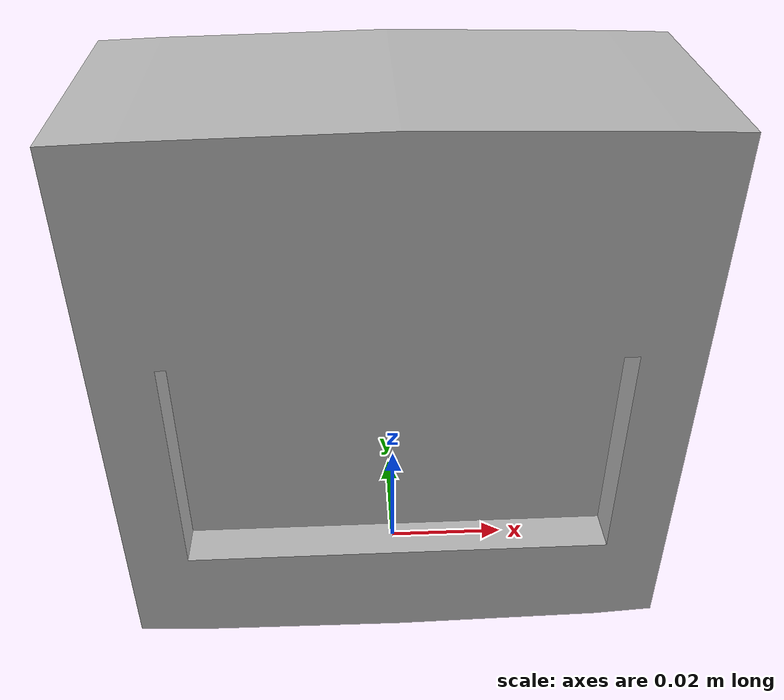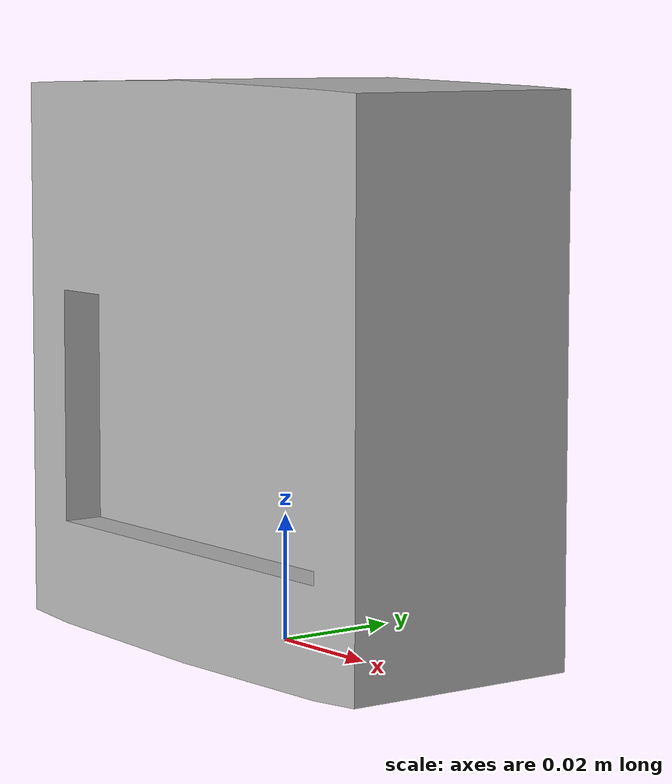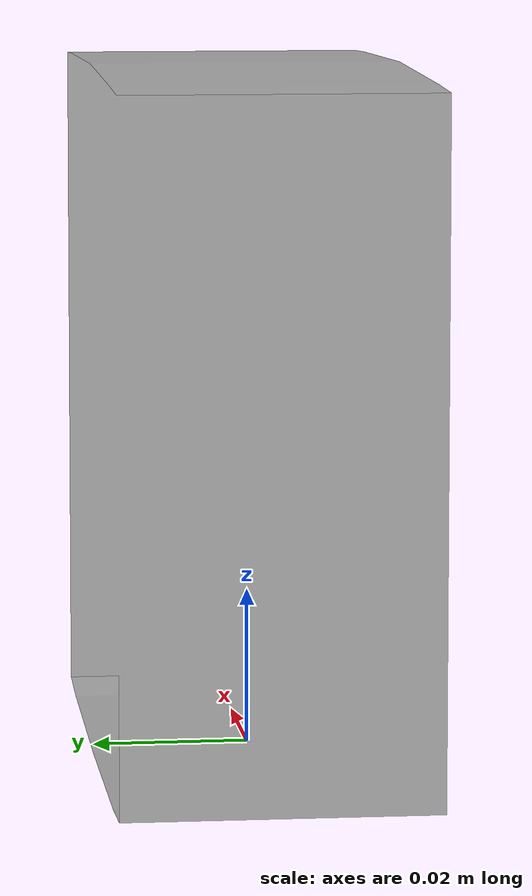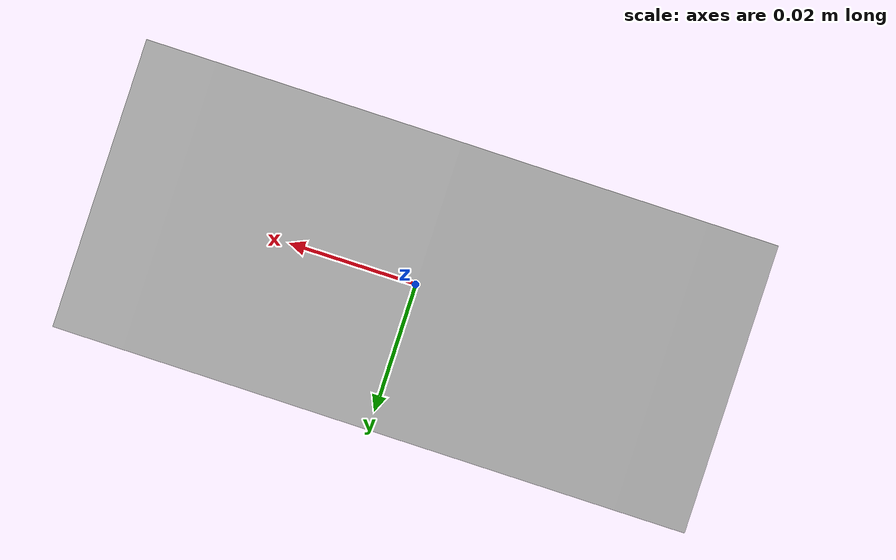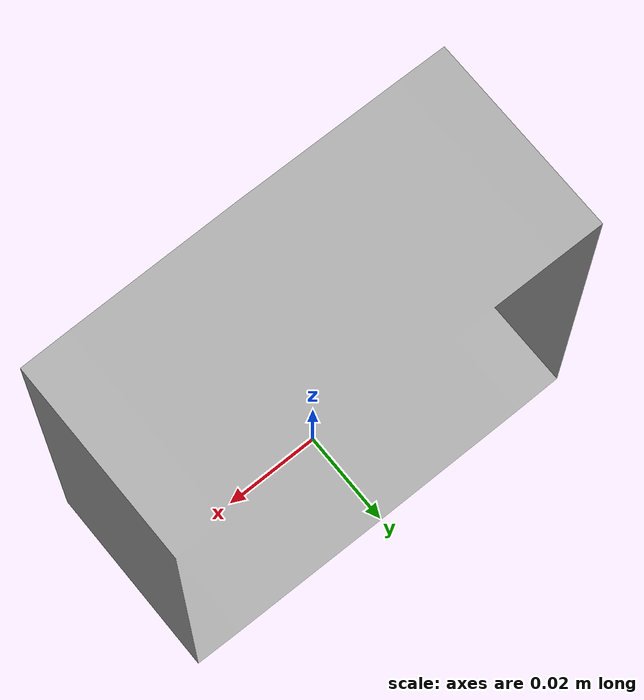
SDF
<sdf version="1.6">
  <model name="ManualFireAlarmButton">
   <static>true</static>
    <link name="body">
      <pose>0 0 0 0 0 0</pose>

      <visual name="visual">
        <geometry>
          <mesh>
            <uri>model://ManualFireAlarmButton/meshes/ManualFireAlarmButton.obj</uri>
          </mesh>
        </geometry>
      </visual>

      <collision name="collision">
        <geometry>
          <mesh>
            <uri>model://ManualFireAlarmButton/meshes/ManualFireAlarmButton_Col.obj</uri>
          </mesh>
        </geometry>
      </collision>

    </link>
  </model>
</sdf>
